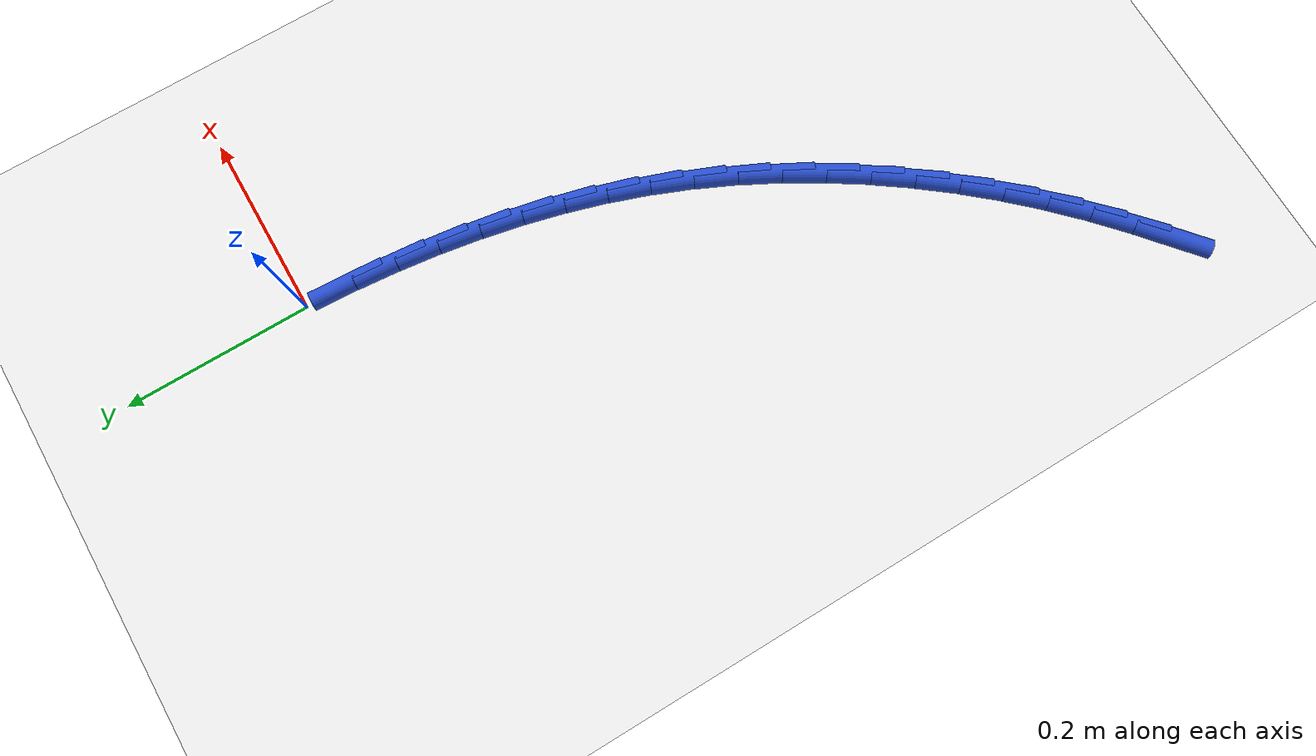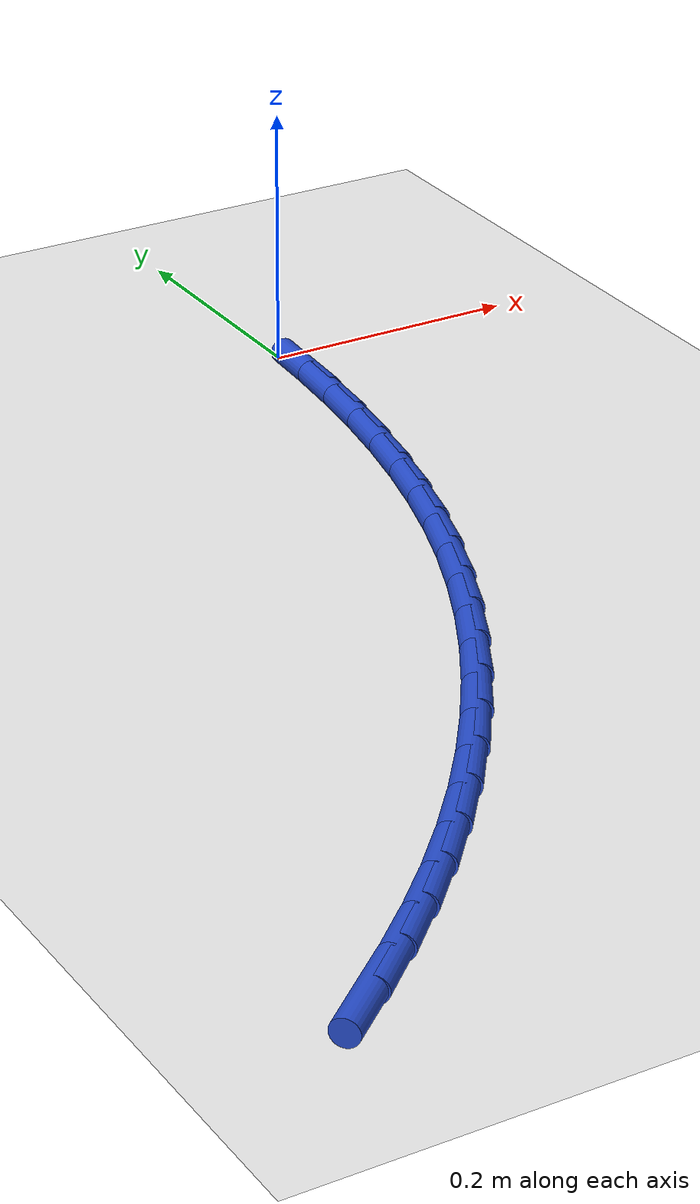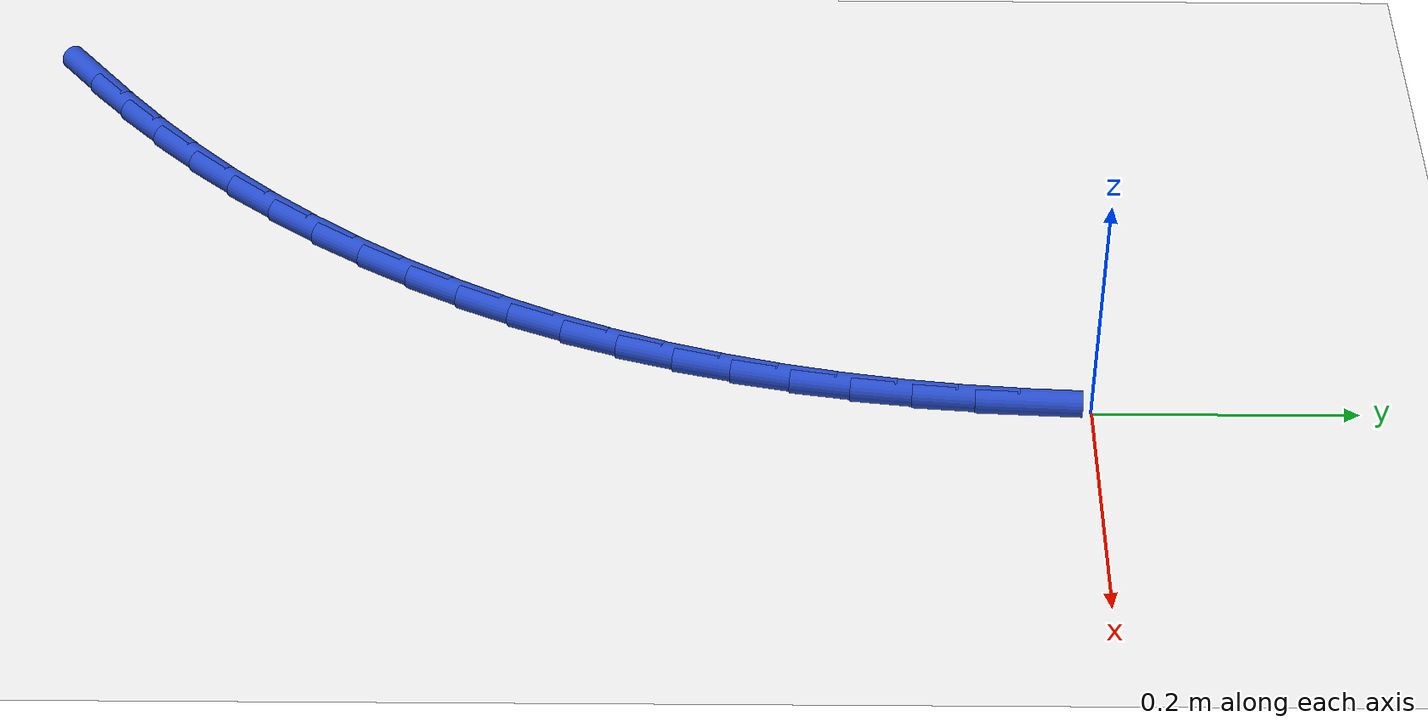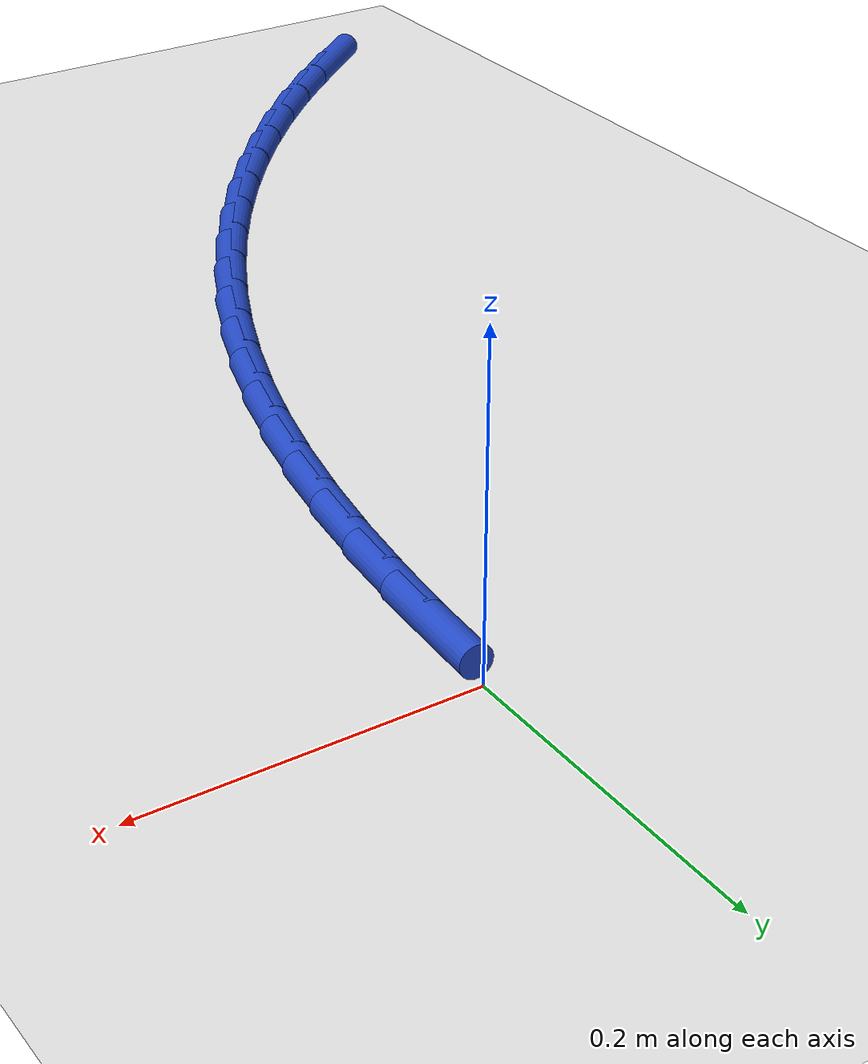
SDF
<sdf version="1.6">
 <world name="default">
  <model name="ground_plane">
   <static>1</static>
   <link name="link">
    <collision name="collision">
     <geometry><plane><normal>0 0 1</normal><size>100 100</size></plane></geometry>
     <surface><friction><ode><mu>100</mu><mu2>50</mu2></ode></friction></surface>
    </collision>
    <visual name="visual">
     <cast_shadows>0</cast_shadows>
     <geometry><plane><normal>0 0 1</normal><size>100 100</size></plane></geometry>
     <material>
      <script><uri>file://media/materials/scripts/gazebo.material</uri><name>Gazebo/WhiteGlow</name></script>
     </material>
    </visual>
   </link>
  </model>
  <model name="line">
   <link name="link_140">
    <pose>-0.38917666072463747 -0.7937340354200599 0.01 0 1.57 0.6986790326748445</pose>
    <collision name="collision">
     <geometry><cylinder><radius>0.01</radius><length>0.08</length></cylinder></geometry>
    </collision>
    <visual name="visual">
     <material>
      <script><name>Gazebo/Blue</name><uri>file://media/materials/scripts/gazebo.material</uri></script>
     </material>
     <geometry><cylinder><radius>0.01</radius><length>0.08</length></cylinder></geometry>
    </visual>
   </link>
   <link name="link_141">
    <pose>-0.35442084749244684 -0.7645380136484863 0.01 0 1.57 0.7338149857058318</pose>
    <collision name="collision">
     <geometry><cylinder><radius>0.01</radius><length>0.08</length></cylinder></geometry>
    </collision>
    <visual name="visual">
     <material>
      <script><name>Gazebo/Blue</name><uri>file://media/materials/scripts/gazebo.material</uri></script>
     </material>
     <geometry><cylinder><radius>0.01</radius><length>0.08</length></cylinder></geometry>
    </visual>
   </link>
   <link name="link_142">
    <pose>-0.3206729045145552 -0.7341037332497071 0.01 0 1.57 0.7743957150949035</pose>
    <collision name="collision">
     <geometry><cylinder><radius>0.01</radius><length>0.08</length></cylinder></geometry>
    </collision>
    <visual name="visual">
     <material>
      <script><name>Gazebo/Blue</name><uri>file://media/materials/scripts/gazebo.material</uri></script>
     </material>
     <geometry><cylinder><radius>0.01</radius><length>0.08</length></cylinder></geometry>
    </visual>
   </link>
   <link name="link_143">
    <pose>-0.2880911341662264 -0.7022311472417953 0.01 0 1.57 0.818764447978219</pose>
    <collision name="collision">
     <geometry><cylinder><radius>0.01</radius><length>0.08</length></cylinder></geometry>
    </collision>
    <visual name="visual">
     <material>
      <script><name>Gazebo/Blue</name><uri>file://media/materials/scripts/gazebo.material</uri></script>
     </material>
     <geometry><cylinder><radius>0.01</radius><length>0.08</length></cylinder></geometry>
    </visual>
   </link>
   <link name="link_144">
    <pose>-0.25682042049254095 -0.6688007979829275 0.01 0 1.57 0.8632490971705312</pose>
    <collision name="collision">
     <geometry><cylinder><radius>0.01</radius><length>0.08</length></cylinder></geometry>
    </collision>
    <visual name="visual">
     <material>
      <script><name>Gazebo/Blue</name><uri>file://media/materials/scripts/gazebo.material</uri></script>
     </material>
     <geometry><cylinder><radius>0.01</radius><length>0.08</length></cylinder></geometry>
    </visual>
   </link>
   <link name="link_145">
    <pose>-0.22697113774346703 -0.6339004907005841 0.01 0 1.57 0.907542796272466</pose>
    <collision name="collision">
     <geometry><cylinder><radius>0.01</radius><length>0.08</length></cylinder></geometry>
    </collision>
    <visual name="visual">
     <material>
      <script><name>Gazebo/Blue</name><uri>file://media/materials/scripts/gazebo.material</uri></script>
     </material>
     <geometry><cylinder><radius>0.01</radius><length>0.08</length></cylinder></geometry>
    </visual>
   </link>
   <link name="link_146">
    <pose>-0.19864818863987166 -0.5976508921566936 0.01 0 1.57 0.9519342011125126</pose>
    <collision name="collision">
     <geometry><cylinder><radius>0.01</radius><length>0.08</length></cylinder></geometry>
    </collision>
    <visual name="visual">
     <material>
      <script><name>Gazebo/Blue</name><uri>file://media/materials/scripts/gazebo.material</uri></script>
     </material>
     <geometry><cylinder><radius>0.01</radius><length>0.08</length></cylinder></geometry>
    </visual>
   </link>
   <link name="link_147">
    <pose>-0.17195647590262358 -0.5601726691131872 0.01 0 1.57 0.9967099186488974</pose>
    <collision name="collision">
     <geometry><cylinder><radius>0.01</radius><length>0.08</length></cylinder></geometry>
    </collision>
    <visual name="visual">
     <material>
      <script><name>Gazebo/Blue</name><uri>file://media/materials/scripts/gazebo.material</uri></script>
     </material>
     <geometry><cylinder><radius>0.01</radius><length>0.08</length></cylinder></geometry>
    </visual>
   </link>
   <link name="link_148">
    <pose>-0.14700090225258977 -0.5215864883319931 0.01 0 1.57 1.0421563229049793</pose>
    <collision name="collision">
     <geometry><cylinder><radius>0.01</radius><length>0.08</length></cylinder></geometry>
    </collision>
    <visual name="visual">
     <material>
      <script><name>Gazebo/Blue</name><uri>file://media/materials/scripts/gazebo.material</uri></script>
     </material>
     <geometry><cylinder><radius>0.01</radius><length>0.08</length></cylinder></geometry>
    </visual>
   </link>
   <link name="link_149">
    <pose>-0.12388637041063774 -0.48201301657504037 0.01 0 1.57 1.0885609386915545</pose>
    <collision name="collision">
     <geometry><cylinder><radius>0.01</radius><length>0.08</length></cylinder></geometry>
    </collision>
    <visual name="visual">
     <material>
      <script><name>Gazebo/Blue</name><uri>file://media/materials/scripts/gazebo.material</uri></script>
     </material>
     <geometry><cylinder><radius>0.01</radius><length>0.08</length></cylinder></geometry>
    </visual>
   </link>
   <link name="link_150">
    <pose>-0.1027177830976351 -0.4415729206042584 0.01 0 1.57 1.1362131268661682</pose>
    <collision name="collision">
     <geometry><cylinder><radius>0.01</radius><length>0.08</length></cylinder></geometry>
    </collision>
    <visual name="visual">
     <material>
      <script><name>Gazebo/Blue</name><uri>file://media/materials/scripts/gazebo.material</uri></script>
     </material>
     <geometry><cylinder><radius>0.01</radius><length>0.08</length></cylinder></geometry>
    </visual>
   </link>
   <link name="link_151">
    <pose>-0.08360004303444905 -0.40038686718157573 0.01 0 1.57 1.1853132362556245</pose>
    <collision name="collision">
     <geometry><cylinder><radius>0.01</radius><length>0.08</length></cylinder></geometry>
    </collision>
    <visual name="visual">
     <material>
      <script><name>Gazebo/Blue</name><uri>file://media/materials/scripts/gazebo.material</uri></script>
     </material>
     <geometry><cylinder><radius>0.01</radius><length>0.08</length></cylinder></geometry>
    </visual>
   </link>
   <link name="link_152">
    <pose>-0.06663168203265347 -0.35857068423742516 0.01 0 1.57 1.234495061357227</pose>
    <collision name="collision">
     <geometry><cylinder><radius>0.01</radius><length>0.08</length></cylinder></geometry>
    </collision>
    <visual name="visual">
     <material>
      <script><name>Gazebo/Blue</name><uri>file://media/materials/scripts/gazebo.material</uri></script>
     </material>
     <geometry><cylinder><radius>0.01</radius><length>0.08</length></cylinder></geometry>
    </visual>
   </link>
   <link name="link_153">
    <pose>-0.051805754133832316 -0.3161600872516983 0.01 0 1.57 1.2821854823638794</pose>
    <collision name="collision">
     <geometry><cylinder><radius>0.01</radius><length>0.08</length></cylinder></geometry>
    </collision>
    <visual name="visual">
     <material>
      <script><name>Gazebo/Blue</name><uri>file://media/materials/scripts/gazebo.material</uri></script>
     </material>
     <geometry><cylinder><radius>0.01</radius><length>0.08</length></cylinder></geometry>
    </visual>
   </link>
   <link name="link_154">
    <pose>-0.039028590349490806 -0.2731249238493016 0.01 0 1.57 1.3279366304615072</pose>
    <collision name="collision">
     <geometry><cylinder><radius>0.01</radius><length>0.08</length></cylinder></geometry>
    </collision>
    <visual name="visual">
     <material>
      <script><name>Gazebo/Blue</name><uri>file://media/materials/scripts/gazebo.material</uri></script>
     </material>
     <geometry><cylinder><radius>0.01</radius><length>0.08</length></cylinder></geometry>
    </visual>
   </link>
   <link name="link_155">
    <pose>-0.028203946857351885 -0.22943308601800552 0.01 0 1.57 1.3714030570143627</pose>
    <collision name="collision">
     <geometry><cylinder><radius>0.01</radius><length>0.08</length></cylinder></geometry>
    </collision>
    <visual name="visual">
     <material>
      <script><name>Gazebo/Blue</name><uri>file://media/materials/scripts/gazebo.material</uri></script>
     </material>
     <geometry><cylinder><radius>0.01</radius><length>0.08</length></cylinder></geometry>
    </visual>
   </link>
   <link name="link_156">
    <pose>-0.019235579835138406 -0.18505246574557982 0.01 0 1.57 1.4123120162486078</pose>
    <collision name="collision">
     <geometry><cylinder><radius>0.01</radius><length>0.08</length></cylinder></geometry>
    </collision>
    <visual name="visual">
     <material>
      <script><name>Gazebo/Blue</name><uri>file://media/materials/scripts/gazebo.material</uri></script>
     </material>
     <geometry><cylinder><radius>0.01</radius><length>0.08</length></cylinder></geometry>
    </visual>
   </link>
   <link name="link_157">
    <pose>-0.01202724546057362 -0.13995095501979635 0.01 0 1.57 1.4504644651349297</pose>
    <collision name="collision">
     <geometry><cylinder><radius>0.01</radius><length>0.08</length></cylinder></geometry>
    </collision>
    <visual name="visual">
     <material>
      <script><name>Gazebo/Blue</name><uri>file://media/materials/scripts/gazebo.material</uri></script>
     </material>
     <geometry><cylinder><radius>0.01</radius><length>0.08</length></cylinder></geometry>
    </visual>
   </link>
   <link name="link_158">
    <pose>-0.006482699911380317 -0.09409644582842494 0.01 0 1.57 1.4857312326677623</pose>
    <collision name="collision">
     <geometry><cylinder><radius>0.01</radius><length>0.08</length></cylinder></geometry>
    </collision>
    <visual name="visual">
     <material>
      <script><name>Gazebo/Blue</name><uri>file://media/materials/scripts/gazebo.material</uri></script>
     </material>
     <geometry><cylinder><radius>0.01</radius><length>0.08</length></cylinder></geometry>
    </visual>
   </link>
   <link name="link_159">
    <pose>-0.002505699365281455 -0.04745683015923591 0.01 0 1.57 1.5180457577595163</pose>
    <collision name="collision">
     <geometry><cylinder><radius>0.01</radius><length>0.08</length></cylinder></geometry>
    </collision>
    <visual name="visual">
     <material>
      <script><name>Gazebo/Blue</name><uri>file://media/materials/scripts/gazebo.material</uri></script>
     </material>
     <geometry><cylinder><radius>0.01</radius><length>0.08</length></cylinder></geometry>
    </visual>
   </link>
  </model>
 </world>
</sdf>
